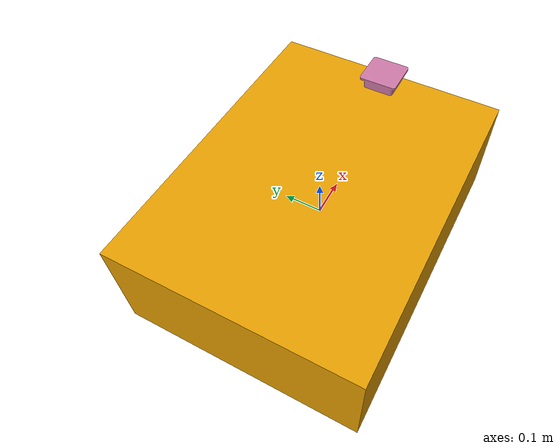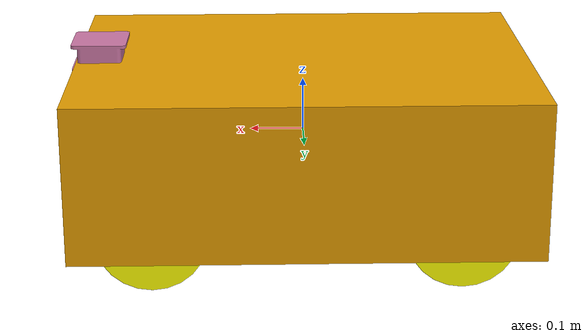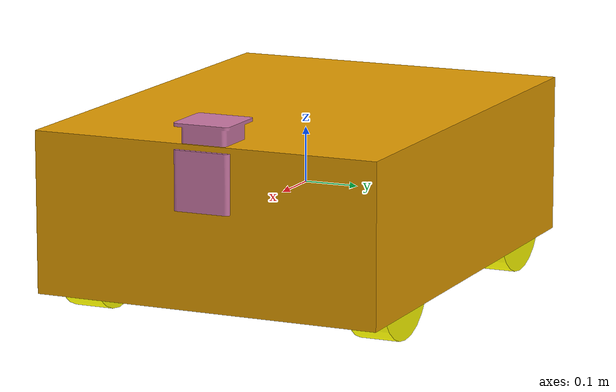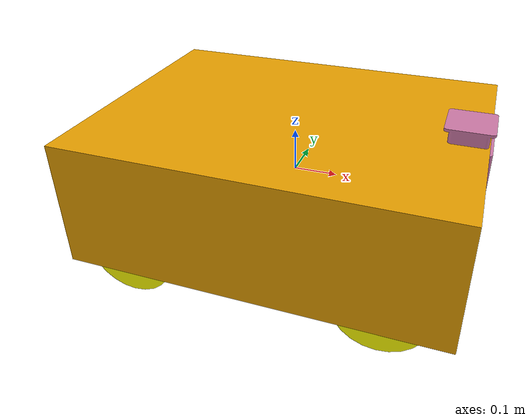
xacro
<?xml version="1.0"?>

<robot xmlns:xacro="http://www.ros.org/wiki/xacro"
		xmlns:sensor="http://playerstage.sourceforge.net/gazebo/xmlschema/#sensor"
    	xmlns:controller="http://playerstage.sourceforge.net/gazebo/xmlschema/#controller"
    	xmlns:interface="http://playerstage.sourceforge.net/gazebo/xmlschema/#interface"
  name="patrol_robot">

	<xacro:macro name="default_inertial" params="mass">
       <inertial>
               <mass value="${mass}" />
               <inertia ixx="1.0" ixy="0.0" ixz="0.0"
                        iyy="1.0" iyz="0.0"
                        izz="1.0" />
       </inertial>
	</xacro:macro>
	<link name="base_footprint">
   		<visual>
			<geometry>
      				<box size="0.850 0.640 0.290"/>
     		</geometry>
			<origin rpy="0 0 0" xyz="0 0 0"/>
   		</visual>
		<xacro:default_inertial mass="0.0001"/>
 	</link>

	<joint name="base_footprint_joint" type="fixed">
		<origin xyz="0 0 0" />
		<parent link="base_footprint" />
		<child link="base_link" />
	</joint>

	<link
		name="base_link">
	</link>

              <link name="tyer_front_left">
                <visual>
                  <geometry>
                    <cylinder length=".0722" radius="0.101"></cylinder>
                  </geometry>
                <material name="yellow">
                <color rgba="1 1 0 1"/>
                </material>
                  </visual>
         </link>

              <link name="tyer_front_right">
                <visual>
                  <geometry>
                    <cylinder length=".0722" radius="0.101"></cylinder>
                  </geometry>
                <material name="yellow">
                  <color rgba="1 1 0 1"/>
                </material>
                </visual>
         </link>

              <link name="tyer_back_left">
                <visual>
                  <geometry>
                    <cylinder length=".0722" radius="0.101"></cylinder>
                  </geometry>
                <material name="yellow">
                  <color rgba="1 1 0 1"/>
                </material>
                </visual>
         </link>

              <link name="tyer_back_right">
                <visual>
                  <geometry>
                    <cylinder length=".0722" radius="0.101"></cylinder>
                  </geometry>
                <material name="yellow">
                    <color rgba="1 1 0 1"/>
                </material>
                </visual>
         </link>
         <joint name="base_to_front_left" type="continuous">
         <origin rpy="1.57075  0  0" xyz="0.275  0.275  -0.0945"/>
         <parent link="base_link"/>
         <child link="tyer_front_left"/>
         <axis xyz="0 0 1"/>
         </joint>

         <joint name="base_to_front_right" type="continuous">
         <origin rpy="1.57075  0  0" xyz="0.275  -0.275  -0.0945"/>
         <parent link="base_link"/>
         <child link="tyer_front_right"/>
         <axis xyz="0 0 1"/>
         </joint>

         <joint name="base_to_back_left" type="continuous">
         <origin rpy="1.57075  0  0" xyz="-0.275  0.275  -0.0945"/>
         <parent link="base_link"/>
         <child link="tyer_back_left"/>
         <axis xyz="0 0 1"/>
         </joint>

         <joint name="base_to_back_right" type="continuous">
         <origin rpy="1.57075  0  0" xyz="-0.275  -0.275  -0.0945"/>
         <parent link="base_link"/>
         <child link="tyer_back_right"/>
         <axis xyz="0 0 1"/>
         </joint>
	 <link
              name="sick_link">
         <inertial>
           <origin
               xyz="0 0 0"
               rpy="0 0 0" />
           <mass
               value="101" />
		<inertia ixx="1e-6" ixy="0" ixz="0" iyy="1e-6" iyz="0" izz="1e-6" />
	</inertial>
          <visual>
                  <geometry>
		    <mesh
		      filename="package://lms1xx/meshes/sick-lms1xx.stl" />
		  </geometry>
                </visual>
         </link>
           <joint name="sick_joint" type="fixed">
	   <origin xyz="0.38085 0 0.131" rpy="0 0 0"/>
	   <parent link="base_link"/>
	   <child link="sick_link"/>
	</joint>

</robot>
